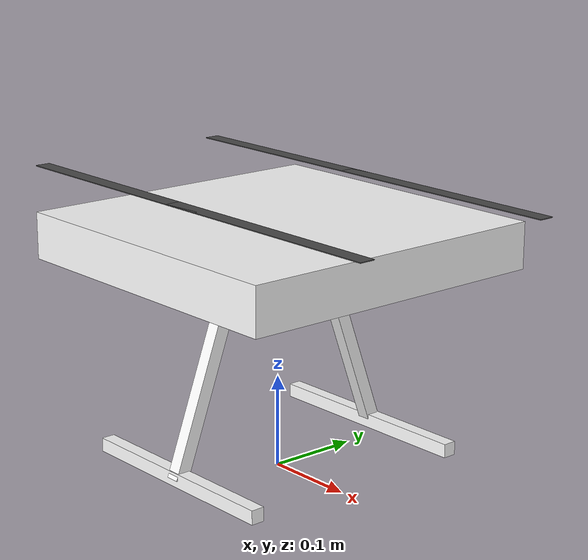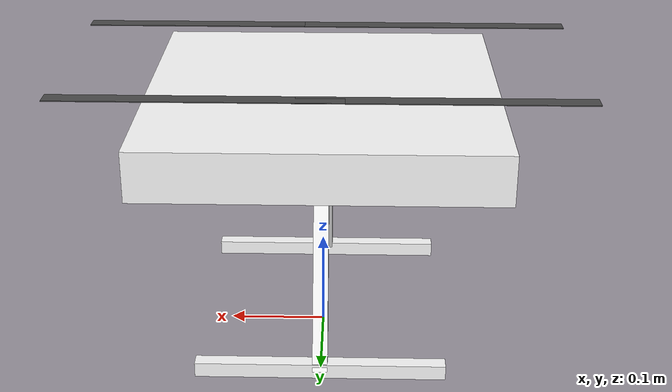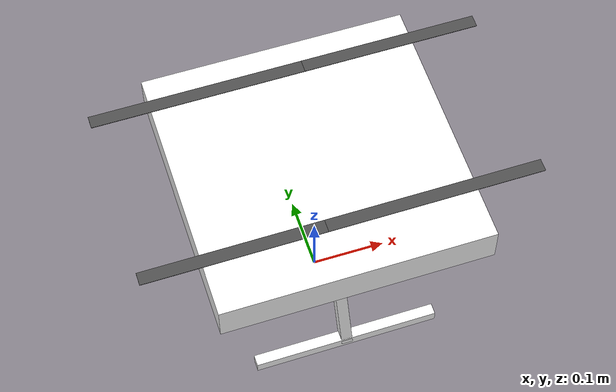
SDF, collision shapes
<?xml version='1.0' encoding='utf-8'?>
<sdf version="1.9">
  <model name="x500_identified">
    <include merge="true">
      <uri>model://x500_identified_base</uri>
    </include>
    <plugin filename="gz-sim-multicopter-motor-model-system" name="gz::sim::systems::MulticopterMotorModel">
      <jointName>rotor_0_joint</jointName>
      <linkName>rotor_0</linkName>
      <turningDirection>ccw</turningDirection>
      <timeConstantUp>0.017447324655535112</timeConstantUp>
      <timeConstantDown>0.003004857656662807</timeConstantDown>
      <maxRotVelocity>1000.0</maxRotVelocity>
      <motorConstant>4.599999999999999e-06</motorConstant>
      <momentConstant>0.013750000000000002</momentConstant>
      <commandSubTopic>command/motor_speed</commandSubTopic>
      <motorNumber>0</motorNumber>
      <rotorDragCoefficient>6.04821e-05</rotorDragCoefficient>
      <rollingMomentCoefficient>9e-07</rollingMomentCoefficient>
      <rotorVelocitySlowdownSim>9.0</rotorVelocitySlowdownSim>
      <motorType>velocity</motorType>
    </plugin>
    <plugin filename="gz-sim-multicopter-motor-model-system" name="gz::sim::systems::MulticopterMotorModel">
      <jointName>rotor_1_joint</jointName>
      <linkName>rotor_1</linkName>
      <turningDirection>ccw</turningDirection>
      <timeConstantUp>0.017447324655535112</timeConstantUp>
      <timeConstantDown>0.003004857656662807</timeConstantDown>
      <maxRotVelocity>1000.0</maxRotVelocity>
      <motorConstant>4.599999999999999e-06</motorConstant>
      <momentConstant>0.013750000000000002</momentConstant>
      <commandSubTopic>command/motor_speed</commandSubTopic>
      <motorNumber>1</motorNumber>
      <rotorDragCoefficient>6.04821e-05</rotorDragCoefficient>
      <rollingMomentCoefficient>9e-07</rollingMomentCoefficient>
      <rotorVelocitySlowdownSim>9.0</rotorVelocitySlowdownSim>
      <motorType>velocity</motorType>
    </plugin>
    <plugin filename="gz-sim-multicopter-motor-model-system" name="gz::sim::systems::MulticopterMotorModel">
      <jointName>rotor_2_joint</jointName>
      <linkName>rotor_2</linkName>
      <turningDirection>cw</turningDirection>
      <timeConstantUp>0.017447324655535112</timeConstantUp>
      <timeConstantDown>0.003004857656662807</timeConstantDown>
      <maxRotVelocity>1000.0</maxRotVelocity>
      <motorConstant>4.599999999999999e-06</motorConstant>
      <momentConstant>0.013750000000000002</momentConstant>
      <commandSubTopic>command/motor_speed</commandSubTopic>
      <motorNumber>2</motorNumber>
      <rotorDragCoefficient>6.04821e-05</rotorDragCoefficient>
      <rollingMomentCoefficient>9e-07</rollingMomentCoefficient>
      <rotorVelocitySlowdownSim>9.0</rotorVelocitySlowdownSim>
      <motorType>velocity</motorType>
    </plugin>
    <plugin filename="gz-sim-multicopter-motor-model-system" name="gz::sim::systems::MulticopterMotorModel">
      <jointName>rotor_3_joint</jointName>
      <linkName>rotor_3</linkName>
      <turningDirection>cw</turningDirection>
      <timeConstantUp>0.017447324655535112</timeConstantUp>
      <timeConstantDown>0.003004857656662807</timeConstantDown>
      <maxRotVelocity>1000.0</maxRotVelocity>
      <motorConstant>4.599999999999999e-06</motorConstant>
      <momentConstant>0.013750000000000002</momentConstant>
      <commandSubTopic>command/motor_speed</commandSubTopic>
      <motorNumber>3</motorNumber>
      <rotorDragCoefficient>6.04821e-05</rotorDragCoefficient>
      <rollingMomentCoefficient>9e-07</rollingMomentCoefficient>
      <rotorVelocitySlowdownSim>9.0</rotorVelocitySlowdownSim>
      <motorType>velocity</motorType>
    </plugin>
    <plugin filename="MotorFailurePlugin" name="gz::sim::systems::MotorFailureSystem">
    </plugin>
    <plugin filename="BodyFrameDragPlugin" name="BodyFrameDragPlugin">
      <link_name>base_link</link_name>
      <linear_drag_coefficients>0 0 0</linear_drag_coefficients>
      <quadratic_drag_coefficients>0.000778319 0.004955396 0.041520374</quadratic_drag_coefficients>
      <angular_damping_coefficients>0.000000000 0.000000000 0.000000000</angular_damping_coefficients>
    </plugin>
    <plugin filename="SystemIdentificationLoggerPlugin" name="SystemIdentificationLoggerPlugin">
      <enabled>true</enabled>
      <base_link_name>base_link</base_link_name>
      <sample_period_s>0.005</sample_period_s>
      <command_sub_topic>command/motor_speed</command_sub_topic>
      <rotor>
        <motor_number>0</motor_number>
        <joint_name>rotor_0_joint</joint_name>
        <link_name>rotor_0</link_name>
        <turning_direction>ccw</turning_direction>
        <time_constant_up_s>0.017447324655535112</time_constant_up_s>
        <time_constant_down_s>0.003004857656662807</time_constant_down_s>
        <max_rot_velocity_radps>1000.0</max_rot_velocity_radps>
        <motor_constant>4.599999999999999e-06</motor_constant>
        <moment_constant>0.013750000000000002</moment_constant>
        <rotor_drag_coefficient>6.04821e-05</rotor_drag_coefficient>
        <rolling_moment_coefficient>9e-07</rolling_moment_coefficient>
        <rotor_velocity_slowdown_sim>9.0</rotor_velocity_slowdown_sim>
      </rotor>
      <rotor>
        <motor_number>1</motor_number>
        <joint_name>rotor_1_joint</joint_name>
        <link_name>rotor_1</link_name>
        <turning_direction>ccw</turning_direction>
        <time_constant_up_s>0.017447324655535112</time_constant_up_s>
        <time_constant_down_s>0.003004857656662807</time_constant_down_s>
        <max_rot_velocity_radps>1000.0</max_rot_velocity_radps>
        <motor_constant>4.599999999999999e-06</motor_constant>
        <moment_constant>0.013750000000000002</moment_constant>
        <rotor_drag_coefficient>6.04821e-05</rotor_drag_coefficient>
        <rolling_moment_coefficient>9e-07</rolling_moment_coefficient>
        <rotor_velocity_slowdown_sim>9.0</rotor_velocity_slowdown_sim>
      </rotor>
      <rotor>
        <motor_number>2</motor_number>
        <joint_name>rotor_2_joint</joint_name>
        <link_name>rotor_2</link_name>
        <turning_direction>cw</turning_direction>
        <time_constant_up_s>0.017447324655535112</time_constant_up_s>
        <time_constant_down_s>0.003004857656662807</time_constant_down_s>
        <max_rot_velocity_radps>1000.0</max_rot_velocity_radps>
        <motor_constant>4.599999999999999e-06</motor_constant>
        <moment_constant>0.013750000000000002</moment_constant>
        <rotor_drag_coefficient>6.04821e-05</rotor_drag_coefficient>
        <rolling_moment_coefficient>9e-07</rolling_moment_coefficient>
        <rotor_velocity_slowdown_sim>9.0</rotor_velocity_slowdown_sim>
      </rotor>
      <rotor>
        <motor_number>3</motor_number>
        <joint_name>rotor_3_joint</joint_name>
        <link_name>rotor_3</link_name>
        <turning_direction>cw</turning_direction>
        <time_constant_up_s>0.017447324655535112</time_constant_up_s>
        <time_constant_down_s>0.003004857656662807</time_constant_down_s>
        <max_rot_velocity_radps>1000.0</max_rot_velocity_radps>
        <motor_constant>4.599999999999999e-06</motor_constant>
        <moment_constant>0.013750000000000002</moment_constant>
        <rotor_drag_coefficient>6.04821e-05</rotor_drag_coefficient>
        <rolling_moment_coefficient>9e-07</rolling_moment_coefficient>
        <rotor_velocity_slowdown_sim>9.0</rotor_velocity_slowdown_sim>
      </rotor>
    </plugin>
  </model>
</sdf>

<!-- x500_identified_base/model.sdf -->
<sdf version="1.9">
  <model name="x500_identified_base">
    <pose>0 0 .24 0 0 0</pose>
    <self_collide>false</self_collide>
    <static>false</static>
    <link name="base_link">
      <inertial>
        <mass>0.800582</mass>
        <inertia>
          <ixx>0.004306</ixx>
          <ixy>0.000000</ixy>
          <ixz>0.000000</ixz>
          <iyy>0.002899</iyy>
          <iyz>0.000000</iyz>
          <izz>0.007204</izz>
        </inertia>
      </inertial>
      <gravity>true</gravity>
      <velocity_decay>
        <linear>0.000000000</linear>
        <angular>0.000000000</angular>
      </velocity_decay>
      <visual name="base_link_visual">
        <pose>0 0 .025 0 0 3.141592654</pose>
        <geometry>
          <mesh>
            <scale>1 1 1</scale>
            <uri>model://x500_base/meshes/NXP-HGD-CF.dae</uri>
          </mesh>
        </geometry>
      </visual>
      <visual name="5010_motor_base_0">
        <pose>0.174 0.174 .032 0 0 -.45</pose>
        <geometry>
          <mesh>
            <scale>1 1 1</scale>
            <uri>model://x500_base/meshes/5010Base.dae</uri>
          </mesh>
        </geometry>
      </visual>
      <visual name="5010_motor_base_1">
        <pose>-0.174 0.174 .032 0 0 -.45</pose>
        <geometry>
          <mesh>
            <scale>1 1 1</scale>
            <uri>model://x500_base/meshes/5010Base.dae</uri>
          </mesh>
        </geometry>
      </visual>
      <visual name="5010_motor_base_2">
        <pose>0.174 -0.174 .032 0 0 -.45</pose>
        <geometry>
          <mesh>
            <scale>1 1 1</scale>
            <uri>model://x500_base/meshes/5010Base.dae</uri>
          </mesh>
        </geometry>
      </visual>
      <visual name="5010_motor_base_3">
        <pose>-0.174 -0.174 .032 0 0 -.45</pose>
        <geometry>
          <mesh>
            <scale>1 1 1</scale>
            <uri>model://x500_base/meshes/5010Base.dae</uri>
          </mesh>
        </geometry>
      </visual>
      <visual name="NXP_FMUK66_FRONT">
        <pose>0.047 .001 .043 1 0 1.57</pose>
        <cast_shadows>false</cast_shadows>
        <geometry>
          <plane>
            <normal>0 0 1</normal>
            <size>.013 .007</size>
          </plane>
        </geometry>
        <material>
          <diffuse>1.0 1.0 1.0</diffuse>
          <specular>1.0 1.0 1.0</specular>
          <pbr>
            <metal>
              <albedo_map>model://x500_base/materials/textures/nxp.png</albedo_map>
            </metal>
          </pbr>
        </material>
      </visual>
      <visual name="NXP_FMUK66_TOP">
        <pose>-0.023 0 .0515 0 0 -1.57</pose>
        <cast_shadows>false</cast_shadows>
        <geometry>
          <plane>
            <normal>0 0 1</normal>
            <size>.013 .007</size>
          </plane>
        </geometry>
        <material>
          <diffuse>1.0 1.0 1.0</diffuse>
          <specular>1.0 1.0 1.0</specular>
          <pbr>
            <metal>
              <albedo_map>model://x500_base/materials/textures/nxp.png</albedo_map>
            </metal>
          </pbr>
        </material>
      </visual>
      <visual name="RDDRONE_FMUK66_TOP">
        <pose>-.03 0 .0515 0 0 -1.57</pose>
        <cast_shadows>false</cast_shadows>
        <geometry>
          <plane>
            <normal>0 0 1</normal>
            <size>.032 .0034</size>
          </plane>
        </geometry>
        <material>
          <diffuse>1.0 1.0 1.0</diffuse>
          <specular>1.0 1.0 1.0</specular>
          <pbr>
            <metal>
              <albedo_map>model://x500_base/materials/textures/rd.png</albedo_map>
            </metal>
          </pbr>
        </material>
      </visual>
      <collision name="base_link_collision_0">
        <pose>0 0 .007 0 0 0</pose>
        <geometry>
          <box>
            <size>0.35355339059327373 0.35355339059327373 0.05</size>
          </box>
        </geometry>
        <surface>
          <contact>
            <ode>
              <min_depth>0.001</min_depth>
              <max_vel>0</max_vel>
            </ode>
          </contact>
          <friction>
            <ode />
          </friction>
        </surface>
      </collision>
      <collision name="base_link_collision_1">
        <pose>0 -0.098 -.123 -0.35 0 0</pose>
        <geometry>
          <box>
            <size>0.015 0.015 0.21</size>
          </box>
        </geometry>
        <surface>
          <contact>
            <ode>
              <min_depth>0.001</min_depth>
              <max_vel>0</max_vel>
            </ode>
          </contact>
          <friction>
            <ode />
          </friction>
        </surface>
      </collision>
      <collision name="base_link_collision_2">
        <pose>0 0.098 -.123 0.35 0 0</pose>
        <geometry>
          <box>
            <size>0.015 0.015 0.21</size>
          </box>
        </geometry>
        <surface>
          <contact>
            <ode>
              <min_depth>0.001</min_depth>
              <max_vel>0</max_vel>
            </ode>
          </contact>
          <friction>
            <ode />
          </friction>
        </surface>
      </collision>
      <collision name="base_link_collision_3">
        <pose>0 -0.132 -.2195 0 0 0</pose>
        <geometry>
          <box>
            <size>0.25 0.015 0.015</size>
          </box>
        </geometry>
        <surface>
          <contact>
            <ode>
              <min_depth>0.001</min_depth>
              <max_vel>0</max_vel>
            </ode>
          </contact>
          <friction>
            <ode />
          </friction>
        </surface>
      </collision>
      <collision name="base_link_collision_4">
        <pose>0 0.132 -.2195 0 0 0</pose>
        <geometry>
          <box>
            <size>0.25 0.015 0.015</size>
          </box>
        </geometry>
        <surface>
          <contact>
            <ode>
              <min_depth>0.001</min_depth>
              <max_vel>0</max_vel>
            </ode>
          </contact>
          <friction>
            <ode />
          </friction>
        </surface>
      </collision>
      <sensor name="air_pressure_sensor" type="air_pressure">
        <gz_frame_id>base_link</gz_frame_id>
        <always_on>1</always_on>
        <update_rate>50</update_rate>
        <air_pressure>
          <pressure>
            <noise type="gaussian">
              <mean>0</mean>
              <stddev>3</stddev>
            </noise>
          </pressure>
        </air_pressure>
      </sensor>
      <sensor name="magnetometer_sensor" type="magnetometer">
        <gz_frame_id>base_link</gz_frame_id>
        <always_on>1</always_on>
        <update_rate>100</update_rate>
        <magnetometer>
          <x>
            <noise type="gaussian">
              <stddev>0.0001</stddev>
            </noise>
          </x>
          <y>
            <noise type="gaussian">
              <stddev>0.0001</stddev>
            </noise>
          </y>
          <z>
            <noise type="gaussian">
              <stddev>0.0001</stddev>
            </noise>
          </z>
        </magnetometer>
      </sensor>
      <sensor name="imu_sensor" type="imu">
        <gz_frame_id>base_link</gz_frame_id>
        <always_on>1</always_on>
        <update_rate>250</update_rate>
        <imu>
          <angular_velocity>
            <x>
              <noise type="gaussian">
                <mean>0.0</mean>
                <stddev>0.0008726646</stddev>
              </noise>
            </x>
            <y>
              <noise type="gaussian">
                <mean>0.0</mean>
                <stddev>0.0008726646</stddev>
              </noise>
            </y>
            <z>
              <noise type="gaussian">
                <mean>0.0</mean>
                <stddev>0.0008726646</stddev>
              </noise>
            </z>
          </angular_velocity>
          <linear_acceleration>
            <x>
              <noise type="gaussian">
                <mean>0.0</mean>
                <stddev>0.00637</stddev>
              </noise>
            </x>
            <y>
              <noise type="gaussian">
                <mean>0.0</mean>
                <stddev>0.00637</stddev>
              </noise>
            </y>
            <z>
              <noise type="gaussian">
                <mean>0.0</mean>
                <stddev>0.00686</stddev>
              </noise>
            </z>
          </linear_acceleration>
        </imu>
      </sensor>
      <sensor name="navsat_sensor" type="navsat">
        <gz_frame_id>base_link</gz_frame_id>
        <always_on>1</always_on>
        <update_rate>30</update_rate>
      </sensor>
    </link>
    <link name="rotor_0">
      <gravity>true</gravity>
      <self_collide>false</self_collide>
      <velocity_decay />
      <pose>0.116672619 -0.116672619 0.060000000 0.000000000 0.000000000 0.000000000</pose>
      <inertial>
        <mass>0.016076923076923075</mass>
        <inertia>
          <ixx>3.8464910483993325e-07</ixx>
          <iyy>2.6115851691700804e-05</iyy>
          <izz>2.649858234714004e-05</izz>
        </inertia>
      </inertial>
      <visual name="rotor_0_visual">
        <pose>-0.022 -0.14638461538461536 -0.016 0 0 0</pose>
        <geometry>
          <mesh>
            <scale>0.8461538461538461 0.8461538461538461 0.8461538461538461</scale>
            <uri>model://x500_base/meshes/1345_prop_ccw.stl</uri>
          </mesh>
        </geometry>
        <material>
          <script>
            <name>Gazebo/DarkGrey</name>
            <uri>file://media/materials/scripts/gazebo.material</uri>
          </script>
        </material>
      </visual>
      <visual name="rotor_0_visual_motor_bell">
        <pose>0 0 -.032 0 0 0</pose>
        <geometry>
          <mesh>
            <scale>1 1 1</scale>
            <uri>model://x500_base/meshes/5010Bell.dae</uri>
          </mesh>
        </geometry>
      </visual>
      <collision name="rotor_0_collision">
        <pose>0 0 0 0 0 0 </pose>
        <geometry>
          <box>
            <size>0.2792307692307692 0.016923076923076923 0.0008461538461538462</size>
          </box>
        </geometry>
        <surface>
          <contact>
            <ode>
              <min_depth>0.001</min_depth>
              <max_vel>0</max_vel>
            </ode>
          </contact>
          <friction>
            <ode />
          </friction>
        </surface>
      </collision>
    </link>
    <joint name="rotor_0_joint" type="revolute">
      <parent>base_link</parent>
      <child>rotor_0</child>
      <axis>
        <xyz>0 0 1</xyz>
        <limit>
          <lower>-1e+16</lower>
          <upper>1e+16</upper>
        </limit>
        <dynamics>
          <spring_reference>0</spring_reference>
          <spring_stiffness>0</spring_stiffness>
        </dynamics>
      </axis>
    </joint>
    <link name="rotor_1">
      <gravity>true</gravity>
      <self_collide>false</self_collide>
      <velocity_decay />
      <pose>-0.116672619 0.116672619 0.060000000 0.000000000 0.000000000 0.000000000</pose>
      <inertial>
        <mass>0.016076923076923075</mass>
        <inertia>
          <ixx>3.8464910483993325e-07</ixx>
          <iyy>2.6115851691700804e-05</iyy>
          <izz>2.649858234714004e-05</izz>
        </inertia>
      </inertial>
      <visual name="rotor_1_visual">
        <pose>-0.022 -0.14638461538461536 -0.016 0 0 0</pose>
        <geometry>
          <mesh>
            <scale>0.8461538461538461 0.8461538461538461 0.8461538461538461</scale>
            <uri>model://x500_base/meshes/1345_prop_ccw.stl</uri>
          </mesh>
        </geometry>
        <material>
          <script>
            <name>Gazebo/DarkGrey</name>
            <uri>file://media/materials/scripts/gazebo.material</uri>
          </script>
        </material>
      </visual>
      <visual name="rotor_1_visual_motor_top">
        <pose>0 0 -.032 0 0 0</pose>
        <geometry>
          <mesh>
            <scale>1 1 1</scale>
            <uri>model://x500_base/meshes/5010Bell.dae</uri>
          </mesh>
        </geometry>
      </visual>
      <collision name="rotor_1_collision">
        <pose>0 0 0 0 0 0 </pose>
        <geometry>
          <box>
            <size>0.2792307692307692 0.016923076923076923 0.0008461538461538462</size>
          </box>
        </geometry>
        <surface>
          <contact>
            <ode>
              <min_depth>0.001</min_depth>
              <max_vel>0</max_vel>
            </ode>
          </contact>
          <friction>
            <ode />
          </friction>
        </surface>
      </collision>
    </link>
    <joint name="rotor_1_joint" type="revolute">
      <parent>base_link</parent>
      <child>rotor_1</child>
      <axis>
        <xyz>0 0 1</xyz>
        <limit>
          <lower>-1e+16</lower>
          <upper>1e+16</upper>
        </limit>
        <dynamics>
          <spring_reference>0</spring_reference>
          <spring_stiffness>0</spring_stiffness>
        </dynamics>
      </axis>
    </joint>
    <link name="rotor_2">
      <gravity>true</gravity>
      <self_collide>false</self_collide>
      <velocity_decay />
      <pose>0.116672619 0.116672619 0.060000000 0.000000000 0.000000000 0.000000000</pose>
      <inertial>
        <mass>0.016076923076923075</mass>
        <inertia>
          <ixx>3.8464910483993325e-07</ixx>
          <iyy>2.6115851691700804e-05</iyy>
          <izz>2.649858234714004e-05</izz>
        </inertia>
      </inertial>
      <visual name="rotor_2_visual">
        <pose>-0.022 -0.14638461538461536 -0.016 0 0 0</pose>
        <geometry>
          <mesh>
            <scale>0.8461538461538461 0.8461538461538461 0.8461538461538461</scale>
            <uri>model://x500_base/meshes/1345_prop_cw.stl</uri>
          </mesh>
        </geometry>
        <material>
          <script>
            <name>Gazebo/DarkGrey</name>
            <uri>file://media/materials/scripts/gazebo.material</uri>
          </script>
        </material>
      </visual>
      <visual name="rotor_2_visual_motor_top">
        <pose>0 0 -.032 0 0 0</pose>
        <geometry>
          <mesh>
            <scale>1 1 1</scale>
            <uri>model://x500_base/meshes/5010Bell.dae</uri>
          </mesh>
        </geometry>
      </visual>
      <collision name="rotor_2_collision">
        <pose>0 0 0 0 0 0 </pose>
        <geometry>
          <box>
            <size>0.2792307692307692 0.016923076923076923 0.0008461538461538462</size>
          </box>
        </geometry>
        <surface>
          <contact>
            <ode>
              <min_depth>0.001</min_depth>
              <max_vel>0</max_vel>
            </ode>
          </contact>
          <friction>
            <ode />
          </friction>
        </surface>
      </collision>
    </link>
    <joint name="rotor_2_joint" type="revolute">
      <parent>base_link</parent>
      <child>rotor_2</child>
      <axis>
        <xyz>0 0 1</xyz>
        <limit>
          <lower>-1e+16</lower>
          <upper>1e+16</upper>
        </limit>
        <dynamics>
          <spring_reference>0</spring_reference>
          <spring_stiffness>0</spring_stiffness>
        </dynamics>
      </axis>
    </joint>
    <link name="rotor_3">
      <gravity>true</gravity>
      <self_collide>false</self_collide>
      <velocity_decay />
      <pose>-0.116672619 -0.116672619 0.060000000 0.000000000 0.000000000 0.000000000</pose>
      <inertial>
        <mass>0.016076923076923075</mass>
        <inertia>
          <ixx>3.8464910483993325e-07</ixx>
          <iyy>2.6115851691700804e-05</iyy>
          <izz>2.649858234714004e-05</izz>
        </inertia>
      </inertial>
      <visual name="rotor_3_visual">
        <pose>-0.022 -0.14638461538461536 -0.016 0 0 0</pose>
        <geometry>
          <mesh>
            <scale>0.8461538461538461 0.8461538461538461 0.8461538461538461</scale>
            <uri>model://x500_base/meshes/1345_prop_cw.stl</uri>
          </mesh>
        </geometry>
        <material>
          <script>
            <name>Gazebo/DarkGrey</name>
            <uri>file://media/materials/scripts/gazebo.material</uri>
          </script>
        </material>
      </visual>
      <visual name="rotor_3_visual_motor_top">
        <pose>0 0 -.032 0 0 0</pose>
        <geometry>
          <mesh>
            <scale>1 1 1</scale>
            <uri>model://x500_base/meshes/5010Bell.dae</uri>
          </mesh>
        </geometry>
      </visual>
      <collision name="rotor_3_collision">
        <pose>0 0 0 0 0 0 </pose>
        <geometry>
          <box>
            <size>0.2792307692307692 0.016923076923076923 0.0008461538461538462</size>
          </box>
        </geometry>
        <surface>
          <contact>
            <ode>
              <min_depth>0.001</min_depth>
              <max_vel>0</max_vel>
            </ode>
          </contact>
          <friction>
            <ode />
          </friction>
        </surface>
      </collision>
    </link>
    <joint name="rotor_3_joint" type="revolute">
      <parent>base_link</parent>
      <child>rotor_3</child>
      <axis>
        <xyz>0 0 1</xyz>
        <limit>
          <lower>-1e+16</lower>
          <upper>1e+16</upper>
        </limit>
        <dynamics>
          <spring_reference>0</spring_reference>
          <spring_stiffness>0</spring_stiffness>
        </dynamics>
      </axis>
    </joint>
  </model>
</sdf>
